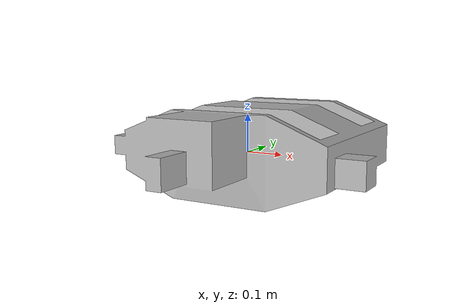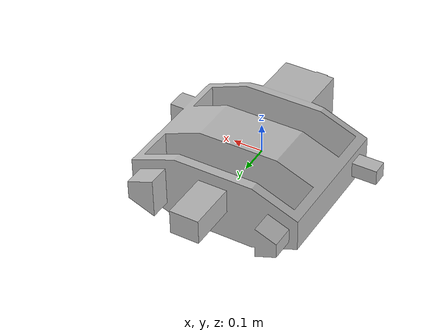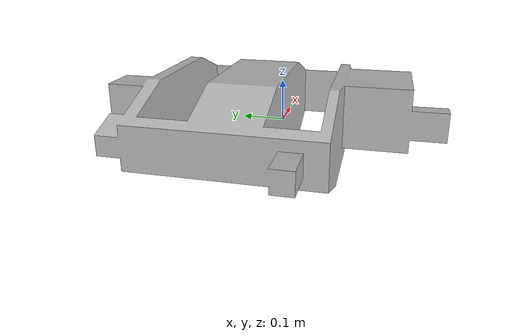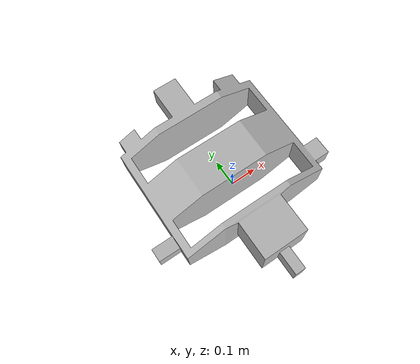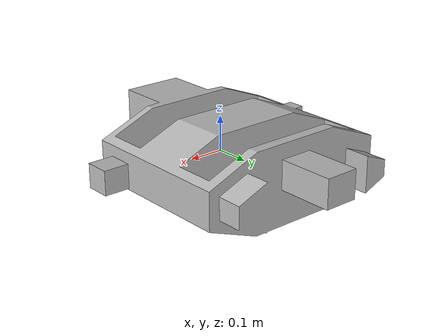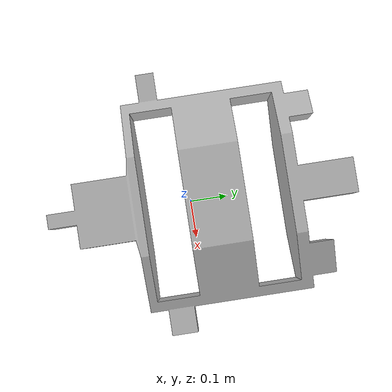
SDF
<?xml version='1.0'?>
<sdf version='1.7'>
  <model name='spiderfish_frame'>
    <link name='base_link'>

      <!-- pose relaive to STL file origin, was moved to AUV center using Blender -->
      <!-- Edited for Spiderfish Aug 9 2024-->
      <inertial>
        <mass>13.7</mass>
        <inertia>
          <ixx> 0.548853532</ixx>
          <ixy> 0.000990367</ixy>
          <ixz> 0.007434770</ixz>
          <iyy> 0.725638212</iyy>
          <iyz> 0.045963196</iyz>
          <izz> 1.077000000</izz>
        </inertia>
         <pose>0.1 -0.062 -0.00878 0 0 0</pose>
      </inertial>

      <!-- Visual Data -->
      <visual name='visual'>
        <pose>0 0 0 0 0 0</pose>
        <geometry>
          <mesh>
            <uri>model://spiderfish_frame/meshes/spiderfish_frame.stl</uri>
            <scale>1 1 1</scale>
          </mesh>
        </geometry>
        <material>
          <lighting>1</lighting>
          <shader type='pixel'/>
        </material>
        <transparency>0</transparency>
        <cast_shadows>1</cast_shadows>
      </visual>

      <gravity>1</gravity>

      <!-- Collision Data-->
      <collision name='collision'>
        <laser_retro>0</laser_retro>
        <max_contacts>2</max_contacts>
        <pose>0 0 0 0 0 0</pose>
        <geometry>
          <mesh>
            <uri>model://spiderfish_frame/meshes/spiderfish_frame_collision.stl</uri>
            <scale>1 1 1</scale>
          </mesh>
        </geometry>
        <!-- Surface Data consists of default value, we should reseach better numbers-->
        <surface>
          <friction>
            <ode>
              <mu>1</mu>
              <mu2>1</mu2>
              <fdir1>0 0 0</fdir1>
              <slip1>0</slip1>
              <slip2>0</slip2>
            </ode>
            <torsional>
              <coefficient>1</coefficient>
              <patch_radius>0</patch_radius>
              <surface_radius>0</surface_radius>
              <use_patch_radius>1</use_patch_radius>
              <ode>
                <slip>0</slip>
              </ode>
            </torsional>
          </friction>
          <bounce>
            <restitution_coefficient>0</restitution_coefficient>
            <threshold>1e+06</threshold>
          </bounce>
          <contact>
            <collide_without_contact>0</collide_without_contact>
            <collide_without_contact_bitmask>1</collide_without_contact_bitmask>
            <collide_bitmask>1</collide_bitmask>
            <ode>
              <soft_cfm>0</soft_cfm>
              <soft_erp>0.2</soft_erp>
              <kp>1e+13</kp>
              <kd>1</kd>
              <max_vel>0.01</max_vel>
              <min_depth>0</min_depth>
            </ode>
            <bullet>
              <split_impulse>1</split_impulse>
              <split_impulse_penetration_threshold>-0.01</split_impulse_penetration_threshold>
              <soft_cfm>0</soft_cfm>
              <soft_erp>0.2</soft_erp>
              <kp>1e+13</kp>
              <kd>1</kd>
            </bullet>
          </contact>
        </surface>
      </collision>

      <sensor type="depth" name="front_camera">
        <pose>0.45 -0.06 0 0 0 0 </pose>
        <update_rate>60</update_rate>
        <visualize>false</visualize>
        <camera name="front">
          <horizontal_fov>1.3962634</horizontal_fov>
          <image>
            <width>640</width>
            <height>480</height>
            <format>R8G8B8</format>
          </image>
          <clip>
            <near>0.02</near>
            <far>300</far>
          </clip>
          <noise>
            <type>gaussian</type>
            <mean>0.0</mean>
            <stddev>0.007</stddev>
          </noise>
        </camera>
        <plugin name="front_camera" filename="libgazebo_ros_camera.so">
          <ros>
            <namespace>/spiderfish/drivers</namespace>
            <remapping>custom_camera/image_raw:=front_camera/image_raw</remapping>
            <remapping>custom_camera/depth/image_raw:=front_camera/depth/image_raw</remapping>
          </ros>

          <publish_camera_info>true</publish_camera_info>

          <frame_name>camera_link_optical</frame_name>

          <min_depth>0.1</min_depth>
          <max_depth>100.0</max_depth>
        </plugin>
      </sensor>
      <sensor type="camera" name="down_camera">
        <pose>0.4 -0.06 0 0 1.57 0</pose>
        <update_rate>60</update_rate>
        <visualize>false</visualize>
        <camera name="down">
          <horizontal_fov>1.3962634</horizontal_fov>
          <image>
            <width>640</width>
            <height>480</height>
            <format>R8G8B8</format>
          </image>
          <clip>
            <near>0.02</near>
            <far>300</far>
          </clip>
          <noise>
            <type>gaussian</type>
            <mean>0.0</mean>
            <stddev>0.007</stddev>
          </noise>
        </camera>
        <plugin name="down_camera" filename="libgazebo_ros_camera.so">
          <ros>
            <namespace>/spiderfish/drivers</namespace>
          </ros>
        </plugin>
      </sensor>
      <sensor name="imu_sensor" type="imu">
        <always_on>true</always_on>
        <update_rate>300</update_rate>
        <visualize>true</visualize>
        <topic>imu</topic>
        <gravity>true</gravity>
        <plugin filename="libgazebo_ros_imu_sensor.so" name="imu">
          <topicName>imu</topicName>
          <bodyName>imu_link</bodyName>
          <updateRateHZ>200</updateRateHZ>
          <gaussianNoise>0.001</gaussianNoise>
          <xyzOffset>0 0 0</xyzOffset>
          <rpyOffset>0 0 0</rpyOffset>
          <frameName>base_link</frameName>
          <linear_acceleration_covariance>0.005 0.005 0.005 0.005 0.005 0.005 0.005 0.005 0.005</linear_acceleration_covariance>
          <angular_velocity_covariance>0.005 0.005 0.005 0.005 0.005 0.005 0.005 0.005 0.005</angular_velocity_covariance>
          <orientation_covariance>0.005 0.005 0.005 0.005 0.005 0.005 0.005 0.005 0.005</orientation_covariance>
          <initialOrientationAsReference>false</initialOrientationAsReference>
          <ros>
            <namespace>/spiderfish/drivers</namespace>
          </ros>
        </plugin>
        <pose>0 0 0 0 0 0</pose>
      </sensor>
    </link>

    <static>0</static>
    <allow_auto_disable>1</allow_auto_disable>
  </model>
</sdf>
